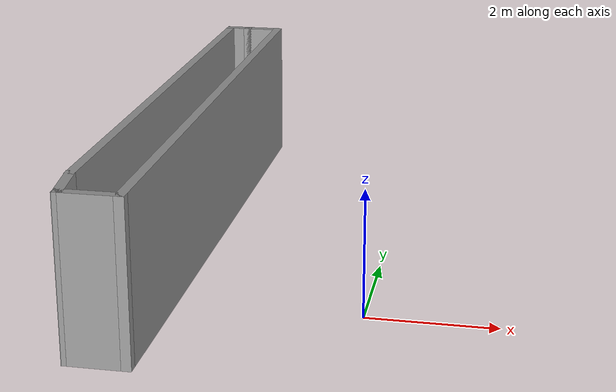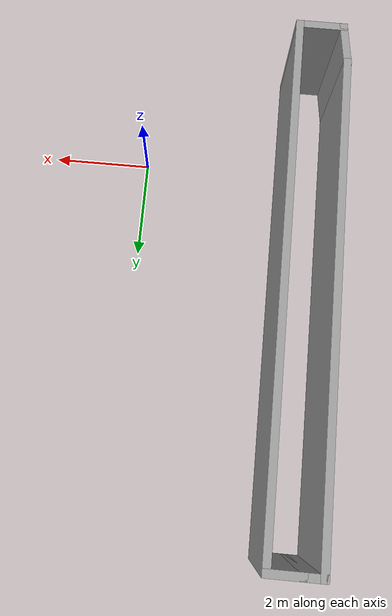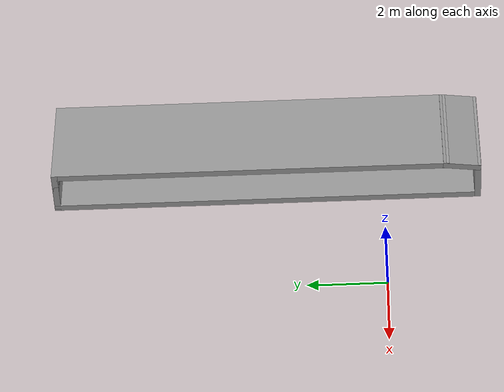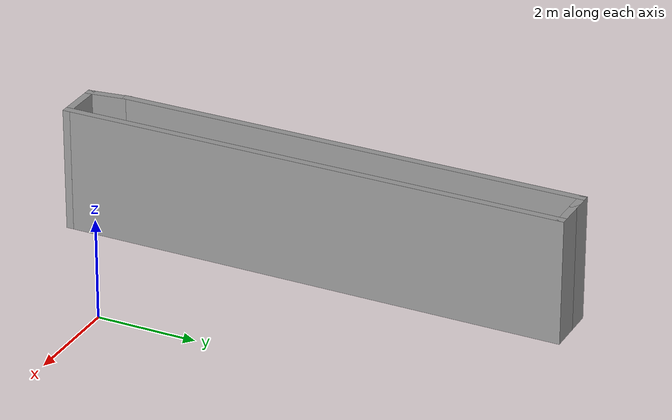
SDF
<?xml version='1.0'?>
<sdf version='1.6'>
  <model name='just_closed_walls'>
    <pose frame=''>-3.36963 2.84537 0 0 -0 0</pose>
    <link name='Wall_0'>
      <collision name='Wall_0_Collision'>
        <geometry>
          <box>
            <size>9.5 0.15 2.5</size>
          </box>
        </geometry>
        <pose frame=''>0 0 1.25 0 -0 0</pose>
      </collision>
      <visual name='Wall_0_Visual'>
        <pose frame=''>0 0 1.25 0 -0 0</pose>
        <geometry>
          <box>
            <size>9.5 0.15 2.5</size>
          </box>
        </geometry>
        <material>
          <script>
            <uri>file://media/materials/scripts/gazebo.material</uri>
            <name>Gazebo/Grey</name>
          </script>
          <ambient>1 1 1 1</ambient>
        </material>
      </visual>
      <pose frame=''>-0.470373 0.379627 0 0 -0 1.5708</pose>
    </link>
    <link name='Wall_1'>
      <collision name='Wall_1_Collision'>
        <geometry>
          <box>
            <size>0.5 0.15 2.5</size>
          </box>
        </geometry>
        <pose frame=''>0 0 1.25 0 -0 0</pose>
      </collision>
      <visual name='Wall_1_Visual'>
        <pose frame=''>0 0 1.25 0 -0 0</pose>
        <geometry>
          <box>
            <size>0.5 0.15 2.5</size>
          </box>
        </geometry>
        <material>
          <script>
            <uri>file://media/materials/scripts/gazebo.material</uri>
            <name>Gazebo/Grey</name>
          </script>
          <ambient>1 1 1 1</ambient>
        </material>
      </visual>
      <pose frame=''>-0.295373 5.05463 0 0 -0 0</pose>
    </link>
    <link name='Wall_2'>
      <collision name='Wall_2_Collision'>
        <geometry>
          <box>
            <size>0.75 0.15 2.5</size>
          </box>
        </geometry>
        <pose frame=''>0 0 1.25 0 -0 0</pose>
      </collision>
      <visual name='Wall_2_Visual'>
        <pose frame=''>0 0 1.25 0 -0 0</pose>
        <geometry>
          <box>
            <size>0.75 0.15 2.5</size>
          </box>
        </geometry>
        <material>
          <script>
            <uri>file://media/materials/scripts/gazebo.material</uri>
            <name>Gazebo/Grey</name>
          </script>
          <ambient>1 1 1 1</ambient>
        </material>
      </visual>
      <pose frame=''>0.179627 5.05463 0 0 -0 0</pose>
    </link>
    <link name='Wall_3'>
      <collision name='Wall_3_Collision'>
        <geometry>
          <box>
            <size>10.25 0.15 2.5</size>
          </box>
        </geometry>
        <pose frame=''>0 0 1.25 0 -0 0</pose>
      </collision>
      <visual name='Wall_3_Visual'>
        <pose frame=''>0 0 1.25 0 -0 0</pose>
        <geometry>
          <box>
            <size>10.25 0.15 2.5</size>
          </box>
        </geometry>
        <material>
          <script>
            <uri>file://media/materials/scripts/gazebo.material</uri>
            <name>Gazebo/Grey</name>
          </script>
          <ambient>1 1 1 1</ambient>
        </material>
      </visual>
      <pose frame=''>0.479627 0.004627 0 0 0 -1.5708</pose>
    </link>
    <link name='Wall_4'>
      <collision name='Wall_4_Collision'>
        <geometry>
          <box>
            <size>1 0.15 2.5</size>
          </box>
        </geometry>
        <pose frame=''>0 0 1.25 0 -0 0</pose>
      </collision>
      <visual name='Wall_4_Visual'>
        <pose frame=''>0 0 1.25 0 -0 0</pose>
        <geometry>
          <box>
            <size>1 0.15 2.5</size>
          </box>
        </geometry>
        <material>
          <script>
            <uri>file://media/materials/scripts/gazebo.material</uri>
            <name>Gazebo/Grey</name>
          </script>
          <ambient>1 1 1 1</ambient>
        </material>
      </visual>
      <pose frame=''>0.054627 -5.04537 0 0 -0 3.14159</pose>
    </link>
    <link name='Wall_5'>
      <collision name='Wall_5_Collision'>
        <geometry>
          <box>
            <size>0.906637 0.15 2.5</size>
          </box>
        </geometry>
        <pose frame=''>0 0 1.25 0 -0 0</pose>
      </collision>
      <visual name='Wall_5_Visual'>
        <pose frame=''>0 0 1.25 0 -0 0</pose>
        <geometry>
          <box>
            <size>0.906637 0.15 2.5</size>
          </box>
        </geometry>
        <material>
          <script>
            <uri>file://media/materials/scripts/gazebo.material</uri>
            <name>Gazebo/Grey</name>
          </script>
          <ambient>1 1 1 1</ambient>
        </material>
      </visual>
      <pose frame=''>-0.420373 -4.67037 0 0 -0 1.70335</pose>
    </link>
    <static>1</static>
  </model>
</sdf>
